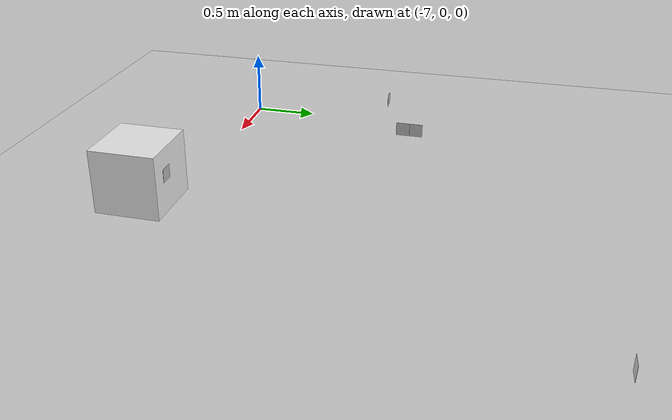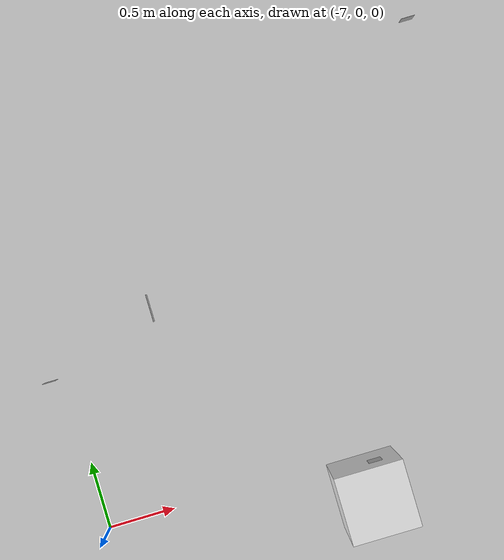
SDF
<sdf version="1.7">
 <world name="default">
  <model name="ground_plane">
   <static>1</static>
   <link name="link">
    <collision name="collision">
     <geometry><plane><normal>0 0 1</normal><size>100 100</size></plane></geometry>
     <surface>
      <contact><collide_bitmask>65535</collide_bitmask></contact>
      <friction><ode><mu>100</mu><mu2>50</mu2></ode></friction>
     </surface>
    </collision>
    <visual name="visual">
     <cast_shadows>0</cast_shadows>
     <geometry><plane><normal>0 0 1</normal><size>100 100</size></plane></geometry>
     <material>
      <script><uri>file://media/materials/scripts/gazebo.material</uri><name>Gazebo/Grey</name></script>
     </material>
    </visual>
   </link>
  </model>
  <model name="unit_box_0">
   <link name="link">
    <inertial>
     <mass>1</mass>
     <inertia>
      <ixx>0.166667</ixx>
      <ixy>0</ixy>
      <ixz>0</ixz>
      <iyy>0.166667</iyy>
      <iyz>0</iyz>
      <izz>0.166667</izz>
     </inertia>
    </inertial>
    <visual name="visual">
     <geometry><box><size>0.497423 0.484886 0.474736</size></box></geometry>
     <material>
      <script><name>Gazebo/White</name><uri>file://media/materials/scripts/gazebo.material</uri></script>
      <ambient>1 1 1 1</ambient>
      <shader type="pixel"/>
     </material>
    </visual>
    <collision name="collision">
     <geometry><box><size>0.497423 0.484886 0.474736</size></box></geometry>
     <surface>
      <friction>
       <ode><mu>1</mu><mu2>1</mu2><fdir1>0 0 0</fdir1><slip1>0</slip1><slip2>0</slip2></ode>
       <torsional>
        <coefficient>1</coefficient>
        <patch_radius>0</patch_radius>
        <surface_radius>0</surface_radius>
        <use_patch_radius>1</use_patch_radius>
        <ode><slip>0</slip></ode>
       </torsional>
      </friction>
      <bounce><restitution_coefficient>0</restitution_coefficient><threshold>1e+06</threshold></bounce>
      <contact>
       <collide_without_contact>0</collide_without_contact>
       <collide_without_contact_bitmask>1</collide_without_contact_bitmask>
       <collide_bitmask>1</collide_bitmask>
       <ode>
        <soft_cfm>0</soft_cfm>
        <soft_erp>0.2</soft_erp>
        <kp>1e+13</kp>
        <kd>1</kd>
        <max_vel>0.01</max_vel>
        <min_depth>0</min_depth>
       </ode>
       <bullet>
        <split_impulse>1</split_impulse>
        <split_impulse_penetration_threshold>-0.01</split_impulse_penetration_threshold>
        <soft_cfm>0</soft_cfm>
        <soft_erp>0.2</soft_erp>
        <kp>1e+13</kp>
        <kd>1</kd>
       </bullet>
      </contact>
     </surface>
    </collision>
   </link>
   <static>1</static>
   <pose>-5.08114 -0.24712 0.249484 0 -0 0</pose>
  </model>
  <model name="marker21">
   <static>1</static>
   <link name="link">
    <visual name="visual">
     <geometry><mesh><uri>model://marker21/meshes/Marker21.dae</uri><scale>0.2 0.2 0.2</scale></mesh></geometry>
    </visual>
   </link>
   <pose>-3.85952 2.96774 0.112855 0 -0 1.5708</pose>
  </model>
  <model name="marker34">
   <static>1</static>
   <link name="link">
    <visual name="visual">
     <geometry><mesh><uri>model://marker34/meshes/Marker34.dae</uri><scale>0.2 0.2 0.2</scale></mesh></geometry>
    </visual>
   </link>
   <pose>-5.00252 -0.003652 0.24659 0 -0 1.5708</pose>
  </model>
  <model name="marker35">
   <static>1</static>
   <link name="link">
    <visual name="visual">
     <geometry><mesh><uri>model://marker35/meshes/Marker35.dae</uri><scale>0.2 0.2 0.2</scale></mesh></geometry>
    </visual>
   </link>
   <pose>-6.22959 1.43204 0.221628 0 -0 0</pose>
  </model>
  <model name="marker36">
   <static>1</static>
   <link name="link">
    <visual name="visual">
     <geometry><mesh><uri>model://marker36/meshes/Marker36.dae</uri><scale>0.2 0.2 0.2</scale></mesh></geometry>
    </visual>
   </link>
   <pose>-6.22992 1.53436 0.221555 0 -0 0</pose>
  </model>
  <model name="marker42">
   <static>1</static>
   <link name="link">
    <visual name="visual">
     <geometry><mesh><uri>model://marker42/meshes/Marker42.dae</uri><scale>0.2 0.2 0.2</scale></mesh></geometry>
    </visual>
   </link>
   <pose>-7.08469 1.17422 0.12393 0 -0 1.5708</pose>
  </model>
 </world>
</sdf>
